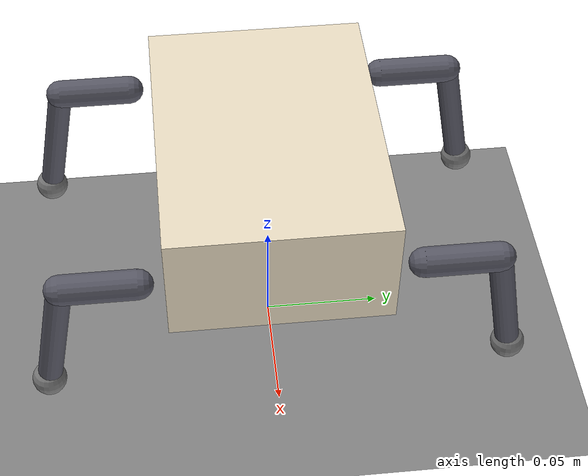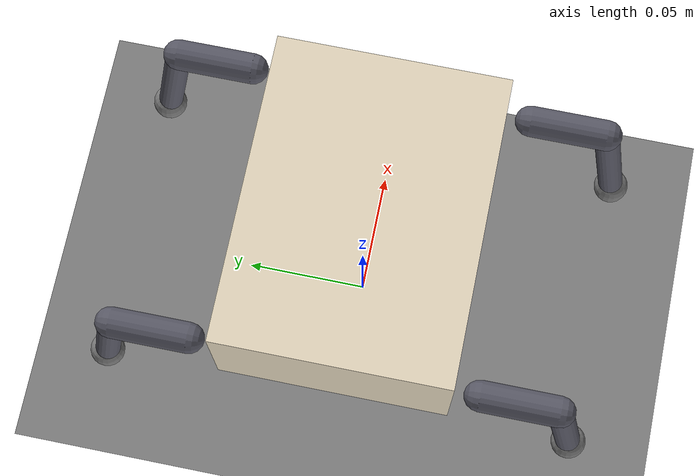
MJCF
<mujoco model="milo">
  <compiler angle="radian" autolimits="true"/>
  <option timestep="0.004" gravity="0 0 -9.81"/>

  <default>
    <joint damping="0.08" armature="0.002" frictionloss="0.02"/>
    <geom friction="1.0 0.005 0.0001" density="400"/>
    <position kp="1.6" forcerange="-0.22 0.22"/> <!-- MG90 ~2.2 kg.cm -->
  </default>

  <asset>
    <texture type="skybox" builtin="gradient" rgb1="0.6 0.7 0.9" rgb2="1 1 1" width="32" height="32"/>
    <material name="body" rgba="0.9 0.85 0.75 1"/>
    <material name="leg" rgba="0.35 0.35 0.4 1"/>
  </asset>

  <worldbody>
    <geom name="floor" type="plane" size="5 5 0.1" friction="1.0 0.005 0.0001"/>
    <light pos="0 0 2" dir="0 0 -1"/>

    <body name="torso" pos="0 0 0.09">
      <freejoint/>
      <!-- ~430 g total upgraded robot; most mass in the torso (Pi, battery, boards) -->
      <geom name="chassis" type="box" size="0.06 0.045 0.025" mass="0.30" material="body"/>
      <site name="imu" pos="0 0 0" size="0.005"/>

      <!-- legs: hip swings fore/aft (y-axis hinge), knee lifts the foot -->
      <body name="fl_upper" pos="0.055 0.055 0">
        <joint name="fl_hip" axis="0 0 1" range="-0.785 0.785"/>
        <geom type="capsule" fromto="0 0 0  0 0.03 0" size="0.006" mass="0.015" material="leg"/>
        <body name="fl_lower" pos="0 0.03 0">
          <joint name="fl_knee" axis="1 0 0" range="-1.047 1.047"/>
          <geom type="capsule" fromto="0 0 0  0 0.01 -0.055" size="0.005" mass="0.012" material="leg"/>
          <geom name="fl_foot" type="sphere" pos="0 0.01 -0.055" size="0.007" friction="1.2 0.005 0.0001"/>
        </body>
      </body>

      <body name="fr_upper" pos="0.055 -0.055 0">
        <joint name="fr_hip" axis="0 0 1" range="-0.785 0.785"/>
        <geom type="capsule" fromto="0 0 0  0 -0.03 0" size="0.006" mass="0.015" material="leg"/>
        <body name="fr_lower" pos="0 -0.03 0">
          <joint name="fr_knee" axis="1 0 0" range="-1.047 1.047"/>
          <geom type="capsule" fromto="0 0 0  0 -0.01 -0.055" size="0.005" mass="0.012" material="leg"/>
          <geom name="fr_foot" type="sphere" pos="0 -0.01 -0.055" size="0.007" friction="1.2 0.005 0.0001"/>
        </body>
      </body>

      <body name="rl_upper" pos="-0.055 0.055 0">
        <joint name="rl_hip" axis="0 0 1" range="-0.785 0.785"/>
        <geom type="capsule" fromto="0 0 0  0 0.03 0" size="0.006" mass="0.015" material="leg"/>
        <body name="rl_lower" pos="0 0.03 0">
          <joint name="rl_knee" axis="1 0 0" range="-1.047 1.047"/>
          <geom type="capsule" fromto="0 0 0  0 0.01 -0.055" size="0.005" mass="0.012" material="leg"/>
          <geom name="rl_foot" type="sphere" pos="0 0.01 -0.055" size="0.007" friction="1.2 0.005 0.0001"/>
        </body>
      </body>

      <body name="rr_upper" pos="-0.055 -0.055 0">
        <joint name="rr_hip" axis="0 0 1" range="-0.785 0.785"/>
        <geom type="capsule" fromto="0 0 0  0 -0.03 0" size="0.006" mass="0.015" material="leg"/>
        <body name="rr_lower" pos="0 -0.03 0">
          <joint name="rr_knee" axis="1 0 0" range="-1.047 1.047"/>
          <geom type="capsule" fromto="0 0 0  0 -0.01 -0.055" size="0.005" mass="0.012" material="leg"/>
          <geom name="rr_foot" type="sphere" pos="0 -0.01 -0.055" size="0.007" friction="1.2 0.005 0.0001"/>
        </body>
      </body>
    </body>
  </worldbody>

  <actuator>
    <!-- order matches the firmware channel order: R1 R2 L1 L2 R4 R3 L3 L4 -->
    <position name="R1" joint="fr_hip"/>
    <position name="R2" joint="fr_knee"/>
    <position name="L1" joint="fl_hip"/>
    <position name="L2" joint="fl_knee"/>
    <position name="R4" joint="rr_knee"/>
    <position name="R3" joint="rr_hip"/>
    <position name="L3" joint="rl_hip"/>
    <position name="L4" joint="rl_knee"/>
  </actuator>

  <sensor>
    <gyro name="gyro" site="imu"/>
    <accelerometer name="accel" site="imu"/>
  </sensor>
</mujoco>
